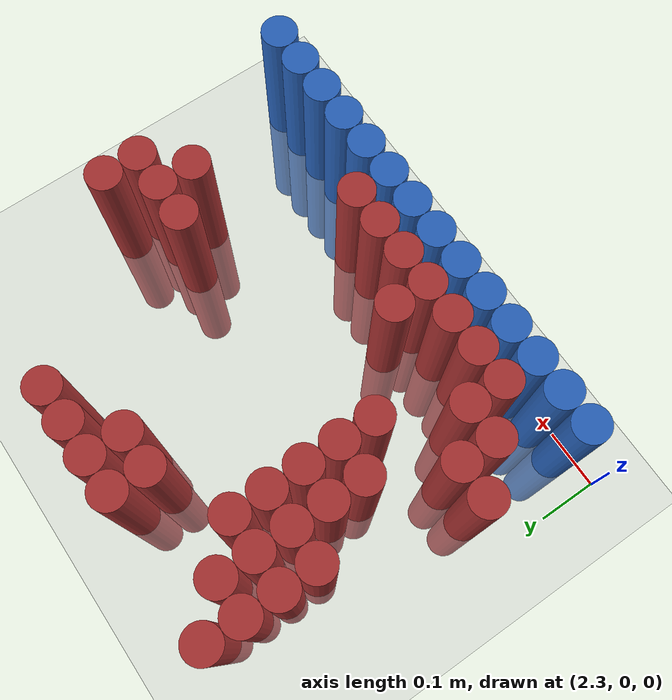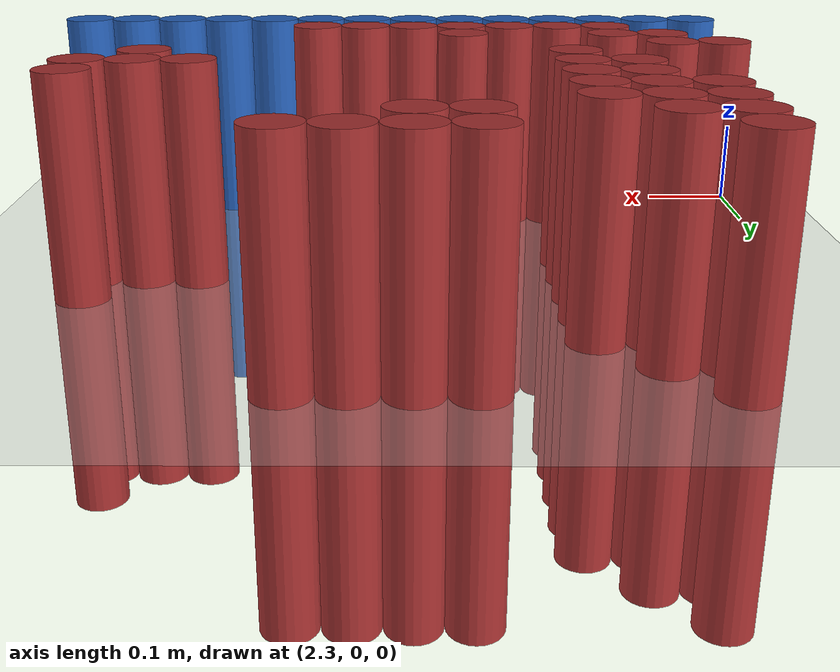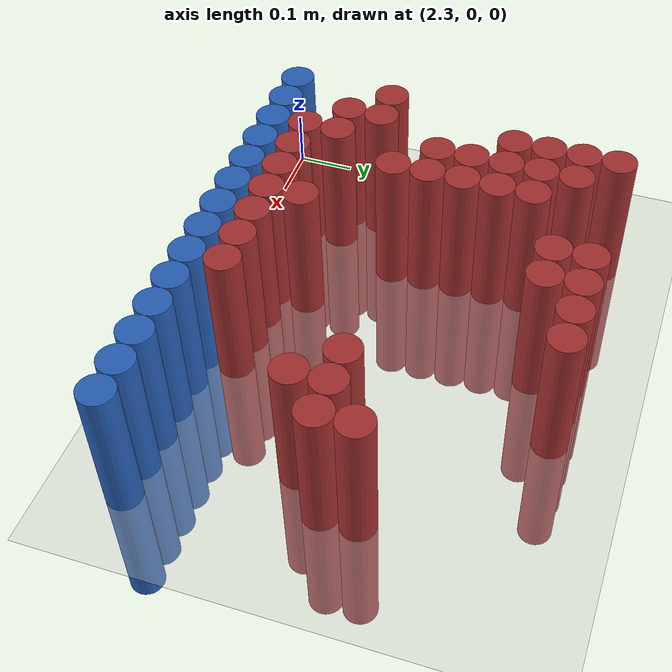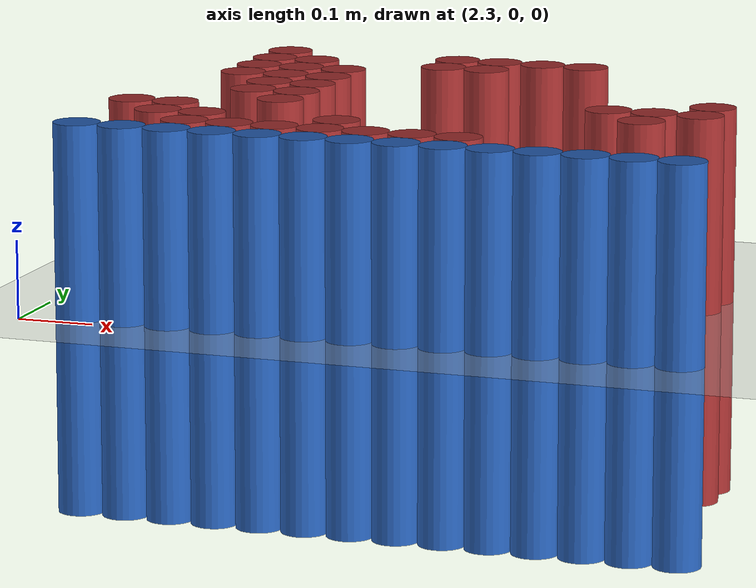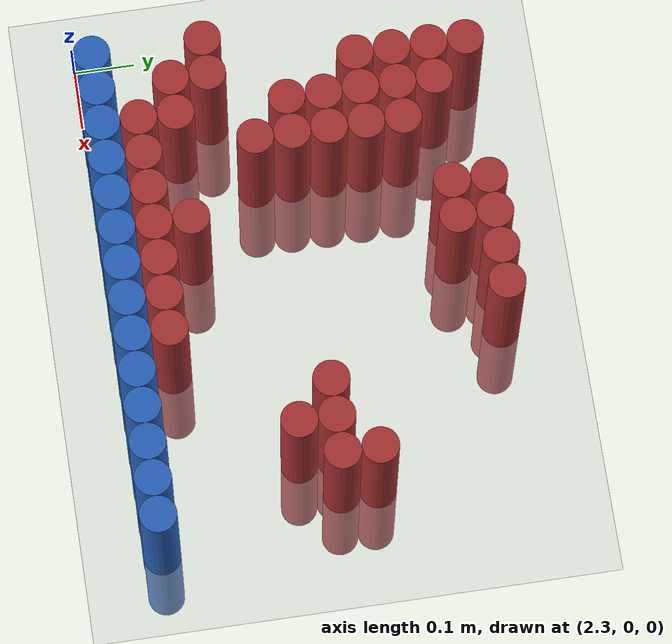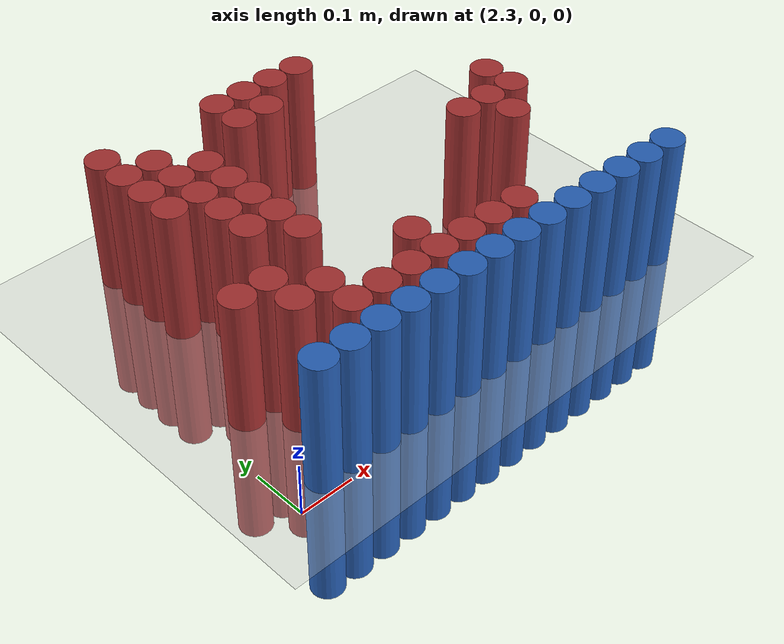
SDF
<sdf version="1.6">
 <world name="default">
  <model name="ground_plane">
   <static>1</static>
   <link name="link">
    <collision name="collision">
     <geometry><plane><normal>0 0 1</normal><size>100 100</size></plane></geometry>
     <surface><friction><ode><mu>100</mu><mu2>50</mu2></ode></friction></surface>
    </collision>
    <visual name="visual">
     <cast_shadows>0</cast_shadows>
     <geometry><plane><normal>0 0 1</normal><size>100 100</size></plane></geometry>
     <material>
      <script><uri>file://media/materials/scripts/gazebo.material</uri><name>Gazebo/Grey</name></script>
     </material>
    </visual>
   </link>
  </model>
  <model name="unit_cylinder_227">
   <static>1</static>
   <pose>2.430000 0.630000 0.000000 0.000000 0.000000 0.000000</pose>
   <link name="link">
    <inertial>
     <mass>1</mass>
     <inertia><ixx>0.145833</ixx><ixy>0</ixy><ixz>0</ixz><iyy>0.145833</iyy><iyz>0</iyz><izz>0.125</izz></inertia>
    </inertial>
    <collision name="collision">
     <geometry><cylinder><radius>0.030000</radius><length>0.5</length></cylinder></geometry>
    </collision>
    <visual name="visual">
     <geometry><cylinder><radius>0.030000</radius><length>0.5</length></cylinder></geometry>
     <material>
      <ambient>0.648000 0.192000 0.192000 1</ambient>
      <diffuse>0.648000 0.192000 0.192000 1</diffuse>
     </material>
     <material>
      <script><name>Gazebo/Grey</name><uri>file://media/materials/scripts/gazebo.material</uri></script>
     </material>
    </visual>
   </link>
  </model>
  <model name="unit_cylinder_228">
   <static>1</static>
   <pose>2.670000 0.630000 0.000000 0.000000 0.000000 0.000000</pose>
   <link name="link">
    <inertial>
     <mass>1</mass>
     <inertia><ixx>0.145833</ixx><ixy>0</ixy><ixz>0</ixz><iyy>0.145833</iyy><iyz>0</iyz><izz>0.125</izz></inertia>
    </inertial>
    <collision name="collision">
     <geometry><cylinder><radius>0.030000</radius><length>0.5</length></cylinder></geometry>
    </collision>
    <visual name="visual">
     <geometry><cylinder><radius>0.030000</radius><length>0.5</length></cylinder></geometry>
     <material>
      <ambient>0.648000 0.192000 0.192000 1</ambient>
      <diffuse>0.648000 0.192000 0.192000 1</diffuse>
     </material>
     <material>
      <script><name>Gazebo/Grey</name><uri>file://media/materials/scripts/gazebo.material</uri></script>
     </material>
    </visual>
   </link>
  </model>
  <model name="unit_cylinder_229">
   <static>1</static>
   <pose>2.730000 0.630000 0.000000 0.000000 0.000000 0.000000</pose>
   <link name="link">
    <inertial>
     <mass>1</mass>
     <inertia><ixx>0.145833</ixx><ixy>0</ixy><ixz>0</ixz><iyy>0.145833</iyy><iyz>0</iyz><izz>0.125</izz></inertia>
    </inertial>
    <collision name="collision">
     <geometry><cylinder><radius>0.030000</radius><length>0.5</length></cylinder></geometry>
    </collision>
    <visual name="visual">
     <geometry><cylinder><radius>0.030000</radius><length>0.5</length></cylinder></geometry>
     <material>
      <ambient>0.648000 0.192000 0.192000 1</ambient>
      <diffuse>0.648000 0.192000 0.192000 1</diffuse>
     </material>
     <material>
      <script><name>Gazebo/Grey</name><uri>file://media/materials/scripts/gazebo.material</uri></script>
     </material>
    </visual>
   </link>
  </model>
  <model name="unit_cylinder_230">
   <static>1</static>
   <pose>2.790000 0.630000 0.000000 0.000000 0.000000 0.000000</pose>
   <link name="link">
    <inertial>
     <mass>1</mass>
     <inertia><ixx>0.145833</ixx><ixy>0</ixy><ixz>0</ixz><iyy>0.145833</iyy><iyz>0</iyz><izz>0.125</izz></inertia>
    </inertial>
    <collision name="collision">
     <geometry><cylinder><radius>0.030000</radius><length>0.5</length></cylinder></geometry>
    </collision>
    <visual name="visual">
     <geometry><cylinder><radius>0.030000</radius><length>0.5</length></cylinder></geometry>
     <material>
      <ambient>0.648000 0.192000 0.192000 1</ambient>
      <diffuse>0.648000 0.192000 0.192000 1</diffuse>
     </material>
     <material>
      <script><name>Gazebo/Grey</name><uri>file://media/materials/scripts/gazebo.material</uri></script>
     </material>
    </visual>
   </link>
  </model>
  <model name="unit_cylinder_231">
   <static>1</static>
   <pose>2.850000 0.630000 0.000000 0.000000 0.000000 0.000000</pose>
   <link name="link">
    <inertial>
     <mass>1</mass>
     <inertia><ixx>0.145833</ixx><ixy>0</ixy><ixz>0</ixz><iyy>0.145833</iyy><iyz>0</iyz><izz>0.125</izz></inertia>
    </inertial>
    <collision name="collision">
     <geometry><cylinder><radius>0.030000</radius><length>0.5</length></cylinder></geometry>
    </collision>
    <visual name="visual">
     <geometry><cylinder><radius>0.030000</radius><length>0.5</length></cylinder></geometry>
     <material>
      <ambient>0.648000 0.192000 0.192000 1</ambient>
      <diffuse>0.648000 0.192000 0.192000 1</diffuse>
     </material>
     <material>
      <script><name>Gazebo/Grey</name><uri>file://media/materials/scripts/gazebo.material</uri></script>
     </material>
    </visual>
   </link>
  </model>
  <model name="unit_cylinder_240">
   <static>1</static>
   <pose>2.430000 0.570000 0.000000 0.000000 0.000000 0.000000</pose>
   <link name="link">
    <inertial>
     <mass>1</mass>
     <inertia><ixx>0.145833</ixx><ixy>0</ixy><ixz>0</ixz><iyy>0.145833</iyy><iyz>0</iyz><izz>0.125</izz></inertia>
    </inertial>
    <collision name="collision">
     <geometry><cylinder><radius>0.030000</radius><length>0.5</length></cylinder></geometry>
    </collision>
    <visual name="visual">
     <geometry><cylinder><radius>0.030000</radius><length>0.5</length></cylinder></geometry>
     <material>
      <ambient>0.648000 0.192000 0.192000 1</ambient>
      <diffuse>0.648000 0.192000 0.192000 1</diffuse>
     </material>
     <material>
      <script><name>Gazebo/Grey</name><uri>file://media/materials/scripts/gazebo.material</uri></script>
     </material>
    </visual>
   </link>
  </model>
  <model name="unit_cylinder_241">
   <static>1</static>
   <pose>2.490000 0.570000 0.000000 0.000000 0.000000 0.000000</pose>
   <link name="link">
    <inertial>
     <mass>1</mass>
     <inertia><ixx>0.145833</ixx><ixy>0</ixy><ixz>0</ixz><iyy>0.145833</iyy><iyz>0</iyz><izz>0.125</izz></inertia>
    </inertial>
    <collision name="collision">
     <geometry><cylinder><radius>0.030000</radius><length>0.5</length></cylinder></geometry>
    </collision>
    <visual name="visual">
     <geometry><cylinder><radius>0.030000</radius><length>0.5</length></cylinder></geometry>
     <material>
      <ambient>0.648000 0.192000 0.192000 1</ambient>
      <diffuse>0.648000 0.192000 0.192000 1</diffuse>
     </material>
     <material>
      <script><name>Gazebo/Grey</name><uri>file://media/materials/scripts/gazebo.material</uri></script>
     </material>
    </visual>
   </link>
  </model>
  <model name="unit_cylinder_242">
   <static>1</static>
   <pose>2.670000 0.570000 0.000000 0.000000 0.000000 0.000000</pose>
   <link name="link">
    <inertial>
     <mass>1</mass>
     <inertia><ixx>0.145833</ixx><ixy>0</ixy><ixz>0</ixz><iyy>0.145833</iyy><iyz>0</iyz><izz>0.125</izz></inertia>
    </inertial>
    <collision name="collision">
     <geometry><cylinder><radius>0.030000</radius><length>0.5</length></cylinder></geometry>
    </collision>
    <visual name="visual">
     <geometry><cylinder><radius>0.030000</radius><length>0.5</length></cylinder></geometry>
     <material>
      <ambient>0.648000 0.192000 0.192000 1</ambient>
      <diffuse>0.648000 0.192000 0.192000 1</diffuse>
     </material>
     <material>
      <script><name>Gazebo/Grey</name><uri>file://media/materials/scripts/gazebo.material</uri></script>
     </material>
    </visual>
   </link>
  </model>
  <model name="unit_cylinder_243">
   <static>1</static>
   <pose>2.730000 0.570000 0.000000 0.000000 0.000000 0.000000</pose>
   <link name="link">
    <inertial>
     <mass>1</mass>
     <inertia><ixx>0.145833</ixx><ixy>0</ixy><ixz>0</ixz><iyy>0.145833</iyy><iyz>0</iyz><izz>0.125</izz></inertia>
    </inertial>
    <collision name="collision">
     <geometry><cylinder><radius>0.030000</radius><length>0.5</length></cylinder></geometry>
    </collision>
    <visual name="visual">
     <geometry><cylinder><radius>0.030000</radius><length>0.5</length></cylinder></geometry>
     <material>
      <ambient>0.648000 0.192000 0.192000 1</ambient>
      <diffuse>0.648000 0.192000 0.192000 1</diffuse>
     </material>
     <material>
      <script><name>Gazebo/Grey</name><uri>file://media/materials/scripts/gazebo.material</uri></script>
     </material>
    </visual>
   </link>
  </model>
  <model name="unit_cylinder_253">
   <static>1</static>
   <pose>2.430000 0.510000 0.000000 0.000000 0.000000 0.000000</pose>
   <link name="link">
    <inertial>
     <mass>1</mass>
     <inertia><ixx>0.145833</ixx><ixy>0</ixy><ixz>0</ixz><iyy>0.145833</iyy><iyz>0</iyz><izz>0.125</izz></inertia>
    </inertial>
    <collision name="collision">
     <geometry><cylinder><radius>0.030000</radius><length>0.5</length></cylinder></geometry>
    </collision>
    <visual name="visual">
     <geometry><cylinder><radius>0.030000</radius><length>0.5</length></cylinder></geometry>
     <material>
      <ambient>0.648000 0.192000 0.192000 1</ambient>
      <diffuse>0.648000 0.192000 0.192000 1</diffuse>
     </material>
     <material>
      <script><name>Gazebo/Grey</name><uri>file://media/materials/scripts/gazebo.material</uri></script>
     </material>
    </visual>
   </link>
  </model>
  <model name="unit_cylinder_254">
   <static>1</static>
   <pose>2.490000 0.510000 0.000000 0.000000 0.000000 0.000000</pose>
   <link name="link">
    <inertial>
     <mass>1</mass>
     <inertia><ixx>0.145833</ixx><ixy>0</ixy><ixz>0</ixz><iyy>0.145833</iyy><iyz>0</iyz><izz>0.125</izz></inertia>
    </inertial>
    <collision name="collision">
     <geometry><cylinder><radius>0.030000</radius><length>0.5</length></cylinder></geometry>
    </collision>
    <visual name="visual">
     <geometry><cylinder><radius>0.030000</radius><length>0.5</length></cylinder></geometry>
     <material>
      <ambient>0.648000 0.192000 0.192000 1</ambient>
      <diffuse>0.648000 0.192000 0.192000 1</diffuse>
     </material>
     <material>
      <script><name>Gazebo/Grey</name><uri>file://media/materials/scripts/gazebo.material</uri></script>
     </material>
    </visual>
   </link>
  </model>
  <model name="unit_cylinder_255">
   <static>1</static>
   <pose>2.550000 0.510000 0.000000 0.000000 0.000000 0.000000</pose>
   <link name="link">
    <inertial>
     <mass>1</mass>
     <inertia><ixx>0.145833</ixx><ixy>0</ixy><ixz>0</ixz><iyy>0.145833</iyy><iyz>0</iyz><izz>0.125</izz></inertia>
    </inertial>
    <collision name="collision">
     <geometry><cylinder><radius>0.030000</radius><length>0.5</length></cylinder></geometry>
    </collision>
    <visual name="visual">
     <geometry><cylinder><radius>0.030000</radius><length>0.5</length></cylinder></geometry>
     <material>
      <ambient>0.648000 0.192000 0.192000 1</ambient>
      <diffuse>0.648000 0.192000 0.192000 1</diffuse>
     </material>
     <material>
      <script><name>Gazebo/Grey</name><uri>file://media/materials/scripts/gazebo.material</uri></script>
     </material>
    </visual>
   </link>
  </model>
  <model name="unit_cylinder_265">
   <static>1</static>
   <pose>2.430000 0.450000 0.000000 0.000000 0.000000 0.000000</pose>
   <link name="link">
    <inertial>
     <mass>1</mass>
     <inertia><ixx>0.145833</ixx><ixy>0</ixy><ixz>0</ixz><iyy>0.145833</iyy><iyz>0</iyz><izz>0.125</izz></inertia>
    </inertial>
    <collision name="collision">
     <geometry><cylinder><radius>0.030000</radius><length>0.5</length></cylinder></geometry>
    </collision>
    <visual name="visual">
     <geometry><cylinder><radius>0.030000</radius><length>0.5</length></cylinder></geometry>
     <material>
      <ambient>0.648000 0.192000 0.192000 1</ambient>
      <diffuse>0.648000 0.192000 0.192000 1</diffuse>
     </material>
     <material>
      <script><name>Gazebo/Grey</name><uri>file://media/materials/scripts/gazebo.material</uri></script>
     </material>
    </visual>
   </link>
  </model>
  <model name="unit_cylinder_266">
   <static>1</static>
   <pose>2.490000 0.450000 0.000000 0.000000 0.000000 0.000000</pose>
   <link name="link">
    <inertial>
     <mass>1</mass>
     <inertia><ixx>0.145833</ixx><ixy>0</ixy><ixz>0</ixz><iyy>0.145833</iyy><iyz>0</iyz><izz>0.125</izz></inertia>
    </inertial>
    <collision name="collision">
     <geometry><cylinder><radius>0.030000</radius><length>0.5</length></cylinder></geometry>
    </collision>
    <visual name="visual">
     <geometry><cylinder><radius>0.030000</radius><length>0.5</length></cylinder></geometry>
     <material>
      <ambient>0.648000 0.192000 0.192000 1</ambient>
      <diffuse>0.648000 0.192000 0.192000 1</diffuse>
     </material>
     <material>
      <script><name>Gazebo/Grey</name><uri>file://media/materials/scripts/gazebo.material</uri></script>
     </material>
    </visual>
   </link>
  </model>
  <model name="unit_cylinder_267">
   <static>1</static>
   <pose>2.550000 0.450000 0.000000 0.000000 0.000000 0.000000</pose>
   <link name="link">
    <inertial>
     <mass>1</mass>
     <inertia><ixx>0.145833</ixx><ixy>0</ixy><ixz>0</ixz><iyy>0.145833</iyy><iyz>0</iyz><izz>0.125</izz></inertia>
    </inertial>
    <collision name="collision">
     <geometry><cylinder><radius>0.030000</radius><length>0.5</length></cylinder></geometry>
    </collision>
    <visual name="visual">
     <geometry><cylinder><radius>0.030000</radius><length>0.5</length></cylinder></geometry>
     <material>
      <ambient>0.648000 0.192000 0.192000 1</ambient>
      <diffuse>0.648000 0.192000 0.192000 1</diffuse>
     </material>
     <material>
      <script><name>Gazebo/Grey</name><uri>file://media/materials/scripts/gazebo.material</uri></script>
     </material>
    </visual>
   </link>
  </model>
  <model name="unit_cylinder_275">
   <static>1</static>
   <pose>2.490000 0.390000 0.000000 0.000000 0.000000 0.000000</pose>
   <link name="link">
    <inertial>
     <mass>1</mass>
     <inertia><ixx>0.145833</ixx><ixy>0</ixy><ixz>0</ixz><iyy>0.145833</iyy><iyz>0</iyz><izz>0.125</izz></inertia>
    </inertial>
    <collision name="collision">
     <geometry><cylinder><radius>0.030000</radius><length>0.5</length></cylinder></geometry>
    </collision>
    <visual name="visual">
     <geometry><cylinder><radius>0.030000</radius><length>0.5</length></cylinder></geometry>
     <material>
      <ambient>0.648000 0.192000 0.192000 1</ambient>
      <diffuse>0.648000 0.192000 0.192000 1</diffuse>
     </material>
     <material>
      <script><name>Gazebo/Grey</name><uri>file://media/materials/scripts/gazebo.material</uri></script>
     </material>
    </visual>
   </link>
  </model>
  <model name="unit_cylinder_276">
   <static>1</static>
   <pose>2.550000 0.390000 0.000000 0.000000 0.000000 0.000000</pose>
   <link name="link">
    <inertial>
     <mass>1</mass>
     <inertia><ixx>0.145833</ixx><ixy>0</ixy><ixz>0</ixz><iyy>0.145833</iyy><iyz>0</iyz><izz>0.125</izz></inertia>
    </inertial>
    <collision name="collision">
     <geometry><cylinder><radius>0.030000</radius><length>0.5</length></cylinder></geometry>
    </collision>
    <visual name="visual">
     <geometry><cylinder><radius>0.030000</radius><length>0.5</length></cylinder></geometry>
     <material>
      <ambient>0.648000 0.192000 0.192000 1</ambient>
      <diffuse>0.648000 0.192000 0.192000 1</diffuse>
     </material>
     <material>
      <script><name>Gazebo/Grey</name><uri>file://media/materials/scripts/gazebo.material</uri></script>
     </material>
    </visual>
   </link>
  </model>
  <model name="unit_cylinder_277">
   <static>1</static>
   <pose>3.090000 0.390000 0.000000 0.000000 0.000000 0.000000</pose>
   <link name="link">
    <inertial>
     <mass>1</mass>
     <inertia><ixx>0.145833</ixx><ixy>0</ixy><ixz>0</ixz><iyy>0.145833</iyy><iyz>0</iyz><izz>0.125</izz></inertia>
    </inertial>
    <collision name="collision">
     <geometry><cylinder><radius>0.030000</radius><length>0.5</length></cylinder></geometry>
    </collision>
    <visual name="visual">
     <geometry><cylinder><radius>0.030000</radius><length>0.5</length></cylinder></geometry>
     <material>
      <ambient>0.648000 0.192000 0.192000 1</ambient>
      <diffuse>0.648000 0.192000 0.192000 1</diffuse>
     </material>
     <material>
      <script><name>Gazebo/Grey</name><uri>file://media/materials/scripts/gazebo.material</uri></script>
     </material>
    </visual>
   </link>
  </model>
  <model name="unit_cylinder_283">
   <static>1</static>
   <pose>2.490000 0.330000 0.000000 0.000000 0.000000 0.000000</pose>
   <link name="link">
    <inertial>
     <mass>1</mass>
     <inertia><ixx>0.145833</ixx><ixy>0</ixy><ixz>0</ixz><iyy>0.145833</iyy><iyz>0</iyz><izz>0.125</izz></inertia>
    </inertial>
    <collision name="collision">
     <geometry><cylinder><radius>0.030000</radius><length>0.5</length></cylinder></geometry>
    </collision>
    <visual name="visual">
     <geometry><cylinder><radius>0.030000</radius><length>0.5</length></cylinder></geometry>
     <material>
      <ambient>0.648000 0.192000 0.192000 1</ambient>
      <diffuse>0.648000 0.192000 0.192000 1</diffuse>
     </material>
     <material>
      <script><name>Gazebo/Grey</name><uri>file://media/materials/scripts/gazebo.material</uri></script>
     </material>
    </visual>
   </link>
  </model>
  <model name="unit_cylinder_284">
   <static>1</static>
   <pose>2.550000 0.330000 0.000000 0.000000 0.000000 0.000000</pose>
   <link name="link">
    <inertial>
     <mass>1</mass>
     <inertia><ixx>0.145833</ixx><ixy>0</ixy><ixz>0</ixz><iyy>0.145833</iyy><iyz>0</iyz><izz>0.125</izz></inertia>
    </inertial>
    <collision name="collision">
     <geometry><cylinder><radius>0.030000</radius><length>0.5</length></cylinder></geometry>
    </collision>
    <visual name="visual">
     <geometry><cylinder><radius>0.030000</radius><length>0.5</length></cylinder></geometry>
     <material>
      <ambient>0.648000 0.192000 0.192000 1</ambient>
      <diffuse>0.648000 0.192000 0.192000 1</diffuse>
     </material>
     <material>
      <script><name>Gazebo/Grey</name><uri>file://media/materials/scripts/gazebo.material</uri></script>
     </material>
    </visual>
   </link>
  </model>
  <model name="unit_cylinder_285">
   <static>1</static>
   <pose>2.970000 0.330000 0.000000 0.000000 0.000000 0.000000</pose>
   <link name="link">
    <inertial>
     <mass>1</mass>
     <inertia><ixx>0.145833</ixx><ixy>0</ixy><ixz>0</ixz><iyy>0.145833</iyy><iyz>0</iyz><izz>0.125</izz></inertia>
    </inertial>
    <collision name="collision">
     <geometry><cylinder><radius>0.030000</radius><length>0.5</length></cylinder></geometry>
    </collision>
    <visual name="visual">
     <geometry><cylinder><radius>0.030000</radius><length>0.5</length></cylinder></geometry>
     <material>
      <ambient>0.648000 0.192000 0.192000 1</ambient>
      <diffuse>0.648000 0.192000 0.192000 1</diffuse>
     </material>
     <material>
      <script><name>Gazebo/Grey</name><uri>file://media/materials/scripts/gazebo.material</uri></script>
     </material>
    </visual>
   </link>
  </model>
  <model name="unit_cylinder_286">
   <static>1</static>
   <pose>3.030000 0.330000 0.000000 0.000000 0.000000 0.000000</pose>
   <link name="link">
    <inertial>
     <mass>1</mass>
     <inertia><ixx>0.145833</ixx><ixy>0</ixy><ixz>0</ixz><iyy>0.145833</iyy><iyz>0</iyz><izz>0.125</izz></inertia>
    </inertial>
    <collision name="collision">
     <geometry><cylinder><radius>0.030000</radius><length>0.5</length></cylinder></geometry>
    </collision>
    <visual name="visual">
     <geometry><cylinder><radius>0.030000</radius><length>0.5</length></cylinder></geometry>
     <material>
      <ambient>0.648000 0.192000 0.192000 1</ambient>
      <diffuse>0.648000 0.192000 0.192000 1</diffuse>
     </material>
     <material>
      <script><name>Gazebo/Grey</name><uri>file://media/materials/scripts/gazebo.material</uri></script>
     </material>
    </visual>
   </link>
  </model>
  <model name="unit_cylinder_287">
   <static>1</static>
   <pose>3.090000 0.330000 0.000000 0.000000 0.000000 0.000000</pose>
   <link name="link">
    <inertial>
     <mass>1</mass>
     <inertia><ixx>0.145833</ixx><ixy>0</ixy><ixz>0</ixz><iyy>0.145833</iyy><iyz>0</iyz><izz>0.125</izz></inertia>
    </inertial>
    <collision name="collision">
     <geometry><cylinder><radius>0.030000</radius><length>0.5</length></cylinder></geometry>
    </collision>
    <visual name="visual">
     <geometry><cylinder><radius>0.030000</radius><length>0.5</length></cylinder></geometry>
     <material>
      <ambient>0.648000 0.192000 0.192000 1</ambient>
      <diffuse>0.648000 0.192000 0.192000 1</diffuse>
     </material>
     <material>
      <script><name>Gazebo/Grey</name><uri>file://media/materials/scripts/gazebo.material</uri></script>
     </material>
    </visual>
   </link>
  </model>
  <model name="unit_cylinder_292">
   <static>1</static>
   <pose>2.550000 0.270000 0.000000 0.000000 0.000000 0.000000</pose>
   <link name="link">
    <inertial>
     <mass>1</mass>
     <inertia><ixx>0.145833</ixx><ixy>0</ixy><ixz>0</ixz><iyy>0.145833</iyy><iyz>0</iyz><izz>0.125</izz></inertia>
    </inertial>
    <collision name="collision">
     <geometry><cylinder><radius>0.030000</radius><length>0.5</length></cylinder></geometry>
    </collision>
    <visual name="visual">
     <geometry><cylinder><radius>0.030000</radius><length>0.5</length></cylinder></geometry>
     <material>
      <ambient>0.648000 0.192000 0.192000 1</ambient>
      <diffuse>0.648000 0.192000 0.192000 1</diffuse>
     </material>
     <material>
      <script><name>Gazebo/Grey</name><uri>file://media/materials/scripts/gazebo.material</uri></script>
     </material>
    </visual>
   </link>
  </model>
  <model name="unit_cylinder_293">
   <static>1</static>
   <pose>3.030000 0.270000 0.000000 0.000000 0.000000 0.000000</pose>
   <link name="link">
    <inertial>
     <mass>1</mass>
     <inertia><ixx>0.145833</ixx><ixy>0</ixy><ixz>0</ixz><iyy>0.145833</iyy><iyz>0</iyz><izz>0.125</izz></inertia>
    </inertial>
    <collision name="collision">
     <geometry><cylinder><radius>0.030000</radius><length>0.5</length></cylinder></geometry>
    </collision>
    <visual name="visual">
     <geometry><cylinder><radius>0.030000</radius><length>0.5</length></cylinder></geometry>
     <material>
      <ambient>0.648000 0.192000 0.192000 1</ambient>
      <diffuse>0.648000 0.192000 0.192000 1</diffuse>
     </material>
     <material>
      <script><name>Gazebo/Grey</name><uri>file://media/materials/scripts/gazebo.material</uri></script>
     </material>
    </visual>
   </link>
  </model>
  <model name="unit_cylinder_301">
   <static>1</static>
   <pose>2.370000 0.210000 0.000000 0.000000 0.000000 0.000000</pose>
   <link name="link">
    <inertial>
     <mass>1</mass>
     <inertia><ixx>0.145833</ixx><ixy>0</ixy><ixz>0</ixz><iyy>0.145833</iyy><iyz>0</iyz><izz>0.125</izz></inertia>
    </inertial>
    <collision name="collision">
     <geometry><cylinder><radius>0.030000</radius><length>0.5</length></cylinder></geometry>
    </collision>
    <visual name="visual">
     <geometry><cylinder><radius>0.030000</radius><length>0.5</length></cylinder></geometry>
     <material>
      <ambient>0.648000 0.192000 0.192000 1</ambient>
      <diffuse>0.648000 0.192000 0.192000 1</diffuse>
     </material>
     <material>
      <script><name>Gazebo/Grey</name><uri>file://media/materials/scripts/gazebo.material</uri></script>
     </material>
    </visual>
   </link>
  </model>
  <model name="unit_cylinder_302">
   <static>1</static>
   <pose>2.430000 0.210000 0.000000 0.000000 0.000000 0.000000</pose>
   <link name="link">
    <inertial>
     <mass>1</mass>
     <inertia><ixx>0.145833</ixx><ixy>0</ixy><ixz>0</ixz><iyy>0.145833</iyy><iyz>0</iyz><izz>0.125</izz></inertia>
    </inertial>
    <collision name="collision">
     <geometry><cylinder><radius>0.030000</radius><length>0.5</length></cylinder></geometry>
    </collision>
    <visual name="visual">
     <geometry><cylinder><radius>0.030000</radius><length>0.5</length></cylinder></geometry>
     <material>
      <ambient>0.648000 0.192000 0.192000 1</ambient>
      <diffuse>0.648000 0.192000 0.192000 1</diffuse>
     </material>
     <material>
      <script><name>Gazebo/Grey</name><uri>file://media/materials/scripts/gazebo.material</uri></script>
     </material>
    </visual>
   </link>
  </model>
  <model name="unit_cylinder_312">
   <static>1</static>
   <pose>2.430000 0.150000 0.000000 0.000000 0.000000 0.000000</pose>
   <link name="link">
    <inertial>
     <mass>1</mass>
     <inertia><ixx>0.145833</ixx><ixy>0</ixy><ixz>0</ixz><iyy>0.145833</iyy><iyz>0</iyz><izz>0.125</izz></inertia>
    </inertial>
    <collision name="collision">
     <geometry><cylinder><radius>0.030000</radius><length>0.5</length></cylinder></geometry>
    </collision>
    <visual name="visual">
     <geometry><cylinder><radius>0.030000</radius><length>0.5</length></cylinder></geometry>
     <material>
      <ambient>0.648000 0.192000 0.192000 1</ambient>
      <diffuse>0.648000 0.192000 0.192000 1</diffuse>
     </material>
     <material>
      <script><name>Gazebo/Grey</name><uri>file://media/materials/scripts/gazebo.material</uri></script>
     </material>
    </visual>
   </link>
  </model>
  <model name="unit_cylinder_313">
   <static>1</static>
   <pose>2.490000 0.150000 0.000000 0.000000 0.000000 0.000000</pose>
   <link name="link">
    <inertial>
     <mass>1</mass>
     <inertia><ixx>0.145833</ixx><ixy>0</ixy><ixz>0</ixz><iyy>0.145833</iyy><iyz>0</iyz><izz>0.125</izz></inertia>
    </inertial>
    <collision name="collision">
     <geometry><cylinder><radius>0.030000</radius><length>0.5</length></cylinder></geometry>
    </collision>
    <visual name="visual">
     <geometry><cylinder><radius>0.030000</radius><length>0.5</length></cylinder></geometry>
     <material>
      <ambient>0.648000 0.192000 0.192000 1</ambient>
      <diffuse>0.648000 0.192000 0.192000 1</diffuse>
     </material>
     <material>
      <script><name>Gazebo/Grey</name><uri>file://media/materials/scripts/gazebo.material</uri></script>
     </material>
    </visual>
   </link>
  </model>
  <model name="unit_cylinder_314">
   <static>1</static>
   <pose>2.670000 0.150000 0.000000 0.000000 0.000000 0.000000</pose>
   <link name="link">
    <inertial>
     <mass>1</mass>
     <inertia><ixx>0.145833</ixx><ixy>0</ixy><ixz>0</ixz><iyy>0.145833</iyy><iyz>0</iyz><izz>0.125</izz></inertia>
    </inertial>
    <collision name="collision">
     <geometry><cylinder><radius>0.030000</radius><length>0.5</length></cylinder></geometry>
    </collision>
    <visual name="visual">
     <geometry><cylinder><radius>0.030000</radius><length>0.5</length></cylinder></geometry>
     <material>
      <ambient>0.648000 0.192000 0.192000 1</ambient>
      <diffuse>0.648000 0.192000 0.192000 1</diffuse>
     </material>
     <material>
      <script><name>Gazebo/Grey</name><uri>file://media/materials/scripts/gazebo.material</uri></script>
     </material>
    </visual>
   </link>
  </model>
  <model name="unit_cylinder_319">
   <static>1</static>
   <pose>2.490000 0.090000 0.000000 0.000000 0.000000 0.000000</pose>
   <link name="link">
    <inertial>
     <mass>1</mass>
     <inertia><ixx>0.145833</ixx><ixy>0</ixy><ixz>0</ixz><iyy>0.145833</iyy><iyz>0</iyz><izz>0.125</izz></inertia>
    </inertial>
    <collision name="collision">
     <geometry><cylinder><radius>0.030000</radius><length>0.5</length></cylinder></geometry>
    </collision>
    <visual name="visual">
     <geometry><cylinder><radius>0.030000</radius><length>0.5</length></cylinder></geometry>
     <material>
      <ambient>0.648000 0.192000 0.192000 1</ambient>
      <diffuse>0.648000 0.192000 0.192000 1</diffuse>
     </material>
     <material>
      <script><name>Gazebo/Grey</name><uri>file://media/materials/scripts/gazebo.material</uri></script>
     </material>
    </visual>
   </link>
  </model>
  <model name="unit_cylinder_320">
   <static>1</static>
   <pose>2.550000 0.090000 0.000000 0.000000 0.000000 0.000000</pose>
   <link name="link">
    <inertial>
     <mass>1</mass>
     <inertia><ixx>0.145833</ixx><ixy>0</ixy><ixz>0</ixz><iyy>0.145833</iyy><iyz>0</iyz><izz>0.125</izz></inertia>
    </inertial>
    <collision name="collision">
     <geometry><cylinder><radius>0.030000</radius><length>0.5</length></cylinder></geometry>
    </collision>
    <visual name="visual">
     <geometry><cylinder><radius>0.030000</radius><length>0.5</length></cylinder></geometry>
     <material>
      <ambient>0.648000 0.192000 0.192000 1</ambient>
      <diffuse>0.648000 0.192000 0.192000 1</diffuse>
     </material>
     <material>
      <script><name>Gazebo/Grey</name><uri>file://media/materials/scripts/gazebo.material</uri></script>
     </material>
    </visual>
   </link>
  </model>
  <model name="unit_cylinder_321">
   <static>1</static>
   <pose>2.610000 0.090000 0.000000 0.000000 0.000000 0.000000</pose>
   <link name="link">
    <inertial>
     <mass>1</mass>
     <inertia><ixx>0.145833</ixx><ixy>0</ixy><ixz>0</ixz><iyy>0.145833</iyy><iyz>0</iyz><izz>0.125</izz></inertia>
    </inertial>
    <collision name="collision">
     <geometry><cylinder><radius>0.030000</radius><length>0.5</length></cylinder></geometry>
    </collision>
    <visual name="visual">
     <geometry><cylinder><radius>0.030000</radius><length>0.5</length></cylinder></geometry>
     <material>
      <ambient>0.648000 0.192000 0.192000 1</ambient>
      <diffuse>0.648000 0.192000 0.192000 1</diffuse>
     </material>
     <material>
      <script><name>Gazebo/Grey</name><uri>file://media/materials/scripts/gazebo.material</uri></script>
     </material>
    </visual>
   </link>
  </model>
  <model name="unit_cylinder_322">
   <static>1</static>
   <pose>2.670000 0.090000 0.000000 0.000000 0.000000 0.000000</pose>
   <link name="link">
    <inertial>
     <mass>1</mass>
     <inertia><ixx>0.145833</ixx><ixy>0</ixy><ixz>0</ixz><iyy>0.145833</iyy><iyz>0</iyz><izz>0.125</izz></inertia>
    </inertial>
    <collision name="collision">
     <geometry><cylinder><radius>0.030000</radius><length>0.5</length></cylinder></geometry>
    </collision>
    <visual name="visual">
     <geometry><cylinder><radius>0.030000</radius><length>0.5</length></cylinder></geometry>
     <material>
      <ambient>0.648000 0.192000 0.192000 1</ambient>
      <diffuse>0.648000 0.192000 0.192000 1</diffuse>
     </material>
     <material>
      <script><name>Gazebo/Grey</name><uri>file://media/materials/scripts/gazebo.material</uri></script>
     </material>
    </visual>
   </link>
  </model>
  <model name="unit_cylinder_323">
   <static>1</static>
   <pose>2.730000 0.090000 0.000000 0.000000 0.000000 0.000000</pose>
   <link name="link">
    <inertial>
     <mass>1</mass>
     <inertia><ixx>0.145833</ixx><ixy>0</ixy><ixz>0</ixz><iyy>0.145833</iyy><iyz>0</iyz><izz>0.125</izz></inertia>
    </inertial>
    <collision name="collision">
     <geometry><cylinder><radius>0.030000</radius><length>0.5</length></cylinder></geometry>
    </collision>
    <visual name="visual">
     <geometry><cylinder><radius>0.030000</radius><length>0.5</length></cylinder></geometry>
     <material>
      <ambient>0.648000 0.192000 0.192000 1</ambient>
      <diffuse>0.648000 0.192000 0.192000 1</diffuse>
     </material>
     <material>
      <script><name>Gazebo/Grey</name><uri>file://media/materials/scripts/gazebo.material</uri></script>
     </material>
    </visual>
   </link>
  </model>
  <model name="unit_cylinder_324">
   <static>1</static>
   <pose>2.790000 0.090000 0.000000 0.000000 0.000000 0.000000</pose>
   <link name="link">
    <inertial>
     <mass>1</mass>
     <inertia><ixx>0.145833</ixx><ixy>0</ixy><ixz>0</ixz><iyy>0.145833</iyy><iyz>0</iyz><izz>0.125</izz></inertia>
    </inertial>
    <collision name="collision">
     <geometry><cylinder><radius>0.030000</radius><length>0.5</length></cylinder></geometry>
    </collision>
    <visual name="visual">
     <geometry><cylinder><radius>0.030000</radius><length>0.5</length></cylinder></geometry>
     <material>
      <ambient>0.648000 0.192000 0.192000 1</ambient>
      <diffuse>0.648000 0.192000 0.192000 1</diffuse>
     </material>
     <material>
      <script><name>Gazebo/Grey</name><uri>file://media/materials/scripts/gazebo.material</uri></script>
     </material>
    </visual>
   </link>
  </model>
  <model name="unit_cylinder_325">
   <static>1</static>
   <pose>2.850000 0.090000 0.000000 0.000000 0.000000 0.000000</pose>
   <link name="link">
    <inertial>
     <mass>1</mass>
     <inertia><ixx>0.145833</ixx><ixy>0</ixy><ixz>0</ixz><iyy>0.145833</iyy><iyz>0</iyz><izz>0.125</izz></inertia>
    </inertial>
    <collision name="collision">
     <geometry><cylinder><radius>0.030000</radius><length>0.5</length></cylinder></geometry>
    </collision>
    <visual name="visual">
     <geometry><cylinder><radius>0.030000</radius><length>0.5</length></cylinder></geometry>
     <material>
      <ambient>0.648000 0.192000 0.192000 1</ambient>
      <diffuse>0.648000 0.192000 0.192000 1</diffuse>
     </material>
     <material>
      <script><name>Gazebo/Grey</name><uri>file://media/materials/scripts/gazebo.material</uri></script>
     </material>
    </visual>
   </link>
  </model>
  <model name="unit_cylinder_338">
   <static>1</static>
   <pose>2.370000 0.030000 0.000000 0.000000 0.000000 0.000000</pose>
   <link name="link">
    <inertial>
     <mass>1</mass>
     <inertia><ixx>0.145833</ixx><ixy>0</ixy><ixz>0</ixz><iyy>0.145833</iyy><iyz>0</iyz><izz>0.125</izz></inertia>
    </inertial>
    <collision name="collision">
     <geometry><cylinder><radius>0.030000</radius><length>0.5</length></cylinder></geometry>
    </collision>
    <visual name="visual">
     <geometry><cylinder><radius>0.030000</radius><length>0.5</length></cylinder></geometry>
     <material>
      <ambient>0.152000 0.379000 0.720000 1</ambient>
      <diffuse>0.152000 0.379000 0.720000 1</diffuse>
     </material>
     <material>
      <script><name>Gazebo/Grey</name><uri>file://media/materials/scripts/gazebo.material</uri></script>
     </material>
    </visual>
   </link>
  </model>
  <model name="unit_cylinder_339">
   <static>1</static>
   <pose>2.430000 0.030000 0.000000 0.000000 0.000000 0.000000</pose>
   <link name="link">
    <inertial>
     <mass>1</mass>
     <inertia><ixx>0.145833</ixx><ixy>0</ixy><ixz>0</ixz><iyy>0.145833</iyy><iyz>0</iyz><izz>0.125</izz></inertia>
    </inertial>
    <collision name="collision">
     <geometry><cylinder><radius>0.030000</radius><length>0.5</length></cylinder></geometry>
    </collision>
    <visual name="visual">
     <geometry><cylinder><radius>0.030000</radius><length>0.5</length></cylinder></geometry>
     <material>
      <ambient>0.152000 0.379000 0.720000 1</ambient>
      <diffuse>0.152000 0.379000 0.720000 1</diffuse>
     </material>
     <material>
      <script><name>Gazebo/Grey</name><uri>file://media/materials/scripts/gazebo.material</uri></script>
     </material>
    </visual>
   </link>
  </model>
  <model name="unit_cylinder_340">
   <static>1</static>
   <pose>2.490000 0.030000 0.000000 0.000000 0.000000 0.000000</pose>
   <link name="link">
    <inertial>
     <mass>1</mass>
     <inertia><ixx>0.145833</ixx><ixy>0</ixy><ixz>0</ixz><iyy>0.145833</iyy><iyz>0</iyz><izz>0.125</izz></inertia>
    </inertial>
    <collision name="collision">
     <geometry><cylinder><radius>0.030000</radius><length>0.5</length></cylinder></geometry>
    </collision>
    <visual name="visual">
     <geometry><cylinder><radius>0.030000</radius><length>0.5</length></cylinder></geometry>
     <material>
      <ambient>0.152000 0.379000 0.720000 1</ambient>
      <diffuse>0.152000 0.379000 0.720000 1</diffuse>
     </material>
     <material>
      <script><name>Gazebo/Grey</name><uri>file://media/materials/scripts/gazebo.material</uri></script>
     </material>
    </visual>
   </link>
  </model>
  <model name="unit_cylinder_341">
   <static>1</static>
   <pose>2.550000 0.030000 0.000000 0.000000 0.000000 0.000000</pose>
   <link name="link">
    <inertial>
     <mass>1</mass>
     <inertia><ixx>0.145833</ixx><ixy>0</ixy><ixz>0</ixz><iyy>0.145833</iyy><iyz>0</iyz><izz>0.125</izz></inertia>
    </inertial>
    <collision name="collision">
     <geometry><cylinder><radius>0.030000</radius><length>0.5</length></cylinder></geometry>
    </collision>
    <visual name="visual">
     <geometry><cylinder><radius>0.030000</radius><length>0.5</length></cylinder></geometry>
     <material>
      <ambient>0.152000 0.379000 0.720000 1</ambient>
      <diffuse>0.152000 0.379000 0.720000 1</diffuse>
     </material>
     <material>
      <script><name>Gazebo/Grey</name><uri>file://media/materials/scripts/gazebo.material</uri></script>
     </material>
    </visual>
   </link>
  </model>
  <model name="unit_cylinder_342">
   <static>1</static>
   <pose>2.610000 0.030000 0.000000 0.000000 0.000000 0.000000</pose>
   <link name="link">
    <inertial>
     <mass>1</mass>
     <inertia><ixx>0.145833</ixx><ixy>0</ixy><ixz>0</ixz><iyy>0.145833</iyy><iyz>0</iyz><izz>0.125</izz></inertia>
    </inertial>
    <collision name="collision">
     <geometry><cylinder><radius>0.030000</radius><length>0.5</length></cylinder></geometry>
    </collision>
    <visual name="visual">
     <geometry><cylinder><radius>0.030000</radius><length>0.5</length></cylinder></geometry>
     <material>
      <ambient>0.152000 0.379000 0.720000 1</ambient>
      <diffuse>0.152000 0.379000 0.720000 1</diffuse>
     </material>
     <material>
      <script><name>Gazebo/Grey</name><uri>file://media/materials/scripts/gazebo.material</uri></script>
     </material>
    </visual>
   </link>
  </model>
  <model name="unit_cylinder_343">
   <static>1</static>
   <pose>2.670000 0.030000 0.000000 0.000000 0.000000 0.000000</pose>
   <link name="link">
    <inertial>
     <mass>1</mass>
     <inertia><ixx>0.145833</ixx><ixy>0</ixy><ixz>0</ixz><iyy>0.145833</iyy><iyz>0</iyz><izz>0.125</izz></inertia>
    </inertial>
    <collision name="collision">
     <geometry><cylinder><radius>0.030000</radius><length>0.5</length></cylinder></geometry>
    </collision>
    <visual name="visual">
     <geometry><cylinder><radius>0.030000</radius><length>0.5</length></cylinder></geometry>
     <material>
      <ambient>0.152000 0.379000 0.720000 1</ambient>
      <diffuse>0.152000 0.379000 0.720000 1</diffuse>
     </material>
     <material>
      <script><name>Gazebo/Grey</name><uri>file://media/materials/scripts/gazebo.material</uri></script>
     </material>
    </visual>
   </link>
  </model>
  <model name="unit_cylinder_344">
   <static>1</static>
   <pose>2.730000 0.030000 0.000000 0.000000 0.000000 0.000000</pose>
   <link name="link">
    <inertial>
     <mass>1</mass>
     <inertia><ixx>0.145833</ixx><ixy>0</ixy><ixz>0</ixz><iyy>0.145833</iyy><iyz>0</iyz><izz>0.125</izz></inertia>
    </inertial>
    <collision name="collision">
     <geometry><cylinder><radius>0.030000</radius><length>0.5</length></cylinder></geometry>
    </collision>
    <visual name="visual">
     <geometry><cylinder><radius>0.030000</radius><length>0.5</length></cylinder></geometry>
     <material>
      <ambient>0.152000 0.379000 0.720000 1</ambient>
      <diffuse>0.152000 0.379000 0.720000 1</diffuse>
     </material>
     <material>
      <script><name>Gazebo/Grey</name><uri>file://media/materials/scripts/gazebo.material</uri></script>
     </material>
    </visual>
   </link>
  </model>
  <model name="unit_cylinder_345">
   <static>1</static>
   <pose>2.790000 0.030000 0.000000 0.000000 0.000000 0.000000</pose>
   <link name="link">
    <inertial>
     <mass>1</mass>
     <inertia><ixx>0.145833</ixx><ixy>0</ixy><ixz>0</ixz><iyy>0.145833</iyy><iyz>0</iyz><izz>0.125</izz></inertia>
    </inertial>
    <collision name="collision">
     <geometry><cylinder><radius>0.030000</radius><length>0.5</length></cylinder></geometry>
    </collision>
    <visual name="visual">
     <geometry><cylinder><radius>0.030000</radius><length>0.5</length></cylinder></geometry>
     <material>
      <ambient>0.152000 0.379000 0.720000 1</ambient>
      <diffuse>0.152000 0.379000 0.720000 1</diffuse>
     </material>
     <material>
      <script><name>Gazebo/Grey</name><uri>file://media/materials/scripts/gazebo.material</uri></script>
     </material>
    </visual>
   </link>
  </model>
  <model name="unit_cylinder_346">
   <static>1</static>
   <pose>2.850000 0.030000 0.000000 0.000000 0.000000 0.000000</pose>
   <link name="link">
    <inertial>
     <mass>1</mass>
     <inertia><ixx>0.145833</ixx><ixy>0</ixy><ixz>0</ixz><iyy>0.145833</iyy><iyz>0</iyz><izz>0.125</izz></inertia>
    </inertial>
    <collision name="collision">
     <geometry><cylinder><radius>0.030000</radius><length>0.5</length></cylinder></geometry>
    </collision>
    <visual name="visual">
     <geometry><cylinder><radius>0.030000</radius><length>0.5</length></cylinder></geometry>
     <material>
      <ambient>0.152000 0.379000 0.720000 1</ambient>
      <diffuse>0.152000 0.379000 0.720000 1</diffuse>
     </material>
     <material>
      <script><name>Gazebo/Grey</name><uri>file://media/materials/scripts/gazebo.material</uri></script>
     </material>
    </visual>
   </link>
  </model>
  <model name="unit_cylinder_347">
   <static>1</static>
   <pose>2.910000 0.030000 0.000000 0.000000 0.000000 0.000000</pose>
   <link name="link">
    <inertial>
     <mass>1</mass>
     <inertia><ixx>0.145833</ixx><ixy>0</ixy><ixz>0</ixz><iyy>0.145833</iyy><iyz>0</iyz><izz>0.125</izz></inertia>
    </inertial>
    <collision name="collision">
     <geometry><cylinder><radius>0.030000</radius><length>0.5</length></cylinder></geometry>
    </collision>
    <visual name="visual">
     <geometry><cylinder><radius>0.030000</radius><length>0.5</length></cylinder></geometry>
     <material>
      <ambient>0.152000 0.379000 0.720000 1</ambient>
      <diffuse>0.152000 0.379000 0.720000 1</diffuse>
     </material>
     <material>
      <script><name>Gazebo/Grey</name><uri>file://media/materials/scripts/gazebo.material</uri></script>
     </material>
    </visual>
   </link>
  </model>
  <model name="unit_cylinder_348">
   <static>1</static>
   <pose>2.970000 0.030000 0.000000 0.000000 0.000000 0.000000</pose>
   <link name="link">
    <inertial>
     <mass>1</mass>
     <inertia><ixx>0.145833</ixx><ixy>0</ixy><ixz>0</ixz><iyy>0.145833</iyy><iyz>0</iyz><izz>0.125</izz></inertia>
    </inertial>
    <collision name="collision">
     <geometry><cylinder><radius>0.030000</radius><length>0.5</length></cylinder></geometry>
    </collision>
    <visual name="visual">
     <geometry><cylinder><radius>0.030000</radius><length>0.5</length></cylinder></geometry>
     <material>
      <ambient>0.152000 0.379000 0.720000 1</ambient>
      <diffuse>0.152000 0.379000 0.720000 1</diffuse>
     </material>
     <material>
      <script><name>Gazebo/Grey</name><uri>file://media/materials/scripts/gazebo.material</uri></script>
     </material>
    </visual>
   </link>
  </model>
  <model name="unit_cylinder_349">
   <static>1</static>
   <pose>3.030000 0.030000 0.000000 0.000000 0.000000 0.000000</pose>
   <link name="link">
    <inertial>
     <mass>1</mass>
     <inertia><ixx>0.145833</ixx><ixy>0</ixy><ixz>0</ixz><iyy>0.145833</iyy><iyz>0</iyz><izz>0.125</izz></inertia>
    </inertial>
    <collision name="collision">
     <geometry><cylinder><radius>0.030000</radius><length>0.5</length></cylinder></geometry>
    </collision>
    <visual name="visual">
     <geometry><cylinder><radius>0.030000</radius><length>0.5</length></cylinder></geometry>
     <material>
      <ambient>0.152000 0.379000 0.720000 1</ambient>
      <diffuse>0.152000 0.379000 0.720000 1</diffuse>
     </material>
     <material>
      <script><name>Gazebo/Grey</name><uri>file://media/materials/scripts/gazebo.material</uri></script>
     </material>
    </visual>
   </link>
  </model>
  <model name="unit_cylinder_350">
   <static>1</static>
   <pose>3.090000 0.030000 0.000000 0.000000 0.000000 0.000000</pose>
   <link name="link">
    <inertial>
     <mass>1</mass>
     <inertia><ixx>0.145833</ixx><ixy>0</ixy><ixz>0</ixz><iyy>0.145833</iyy><iyz>0</iyz><izz>0.125</izz></inertia>
    </inertial>
    <collision name="collision">
     <geometry><cylinder><radius>0.030000</radius><length>0.5</length></cylinder></geometry>
    </collision>
    <visual name="visual">
     <geometry><cylinder><radius>0.030000</radius><length>0.5</length></cylinder></geometry>
     <material>
      <ambient>0.152000 0.379000 0.720000 1</ambient>
      <diffuse>0.152000 0.379000 0.720000 1</diffuse>
     </material>
     <material>
      <script><name>Gazebo/Grey</name><uri>file://media/materials/scripts/gazebo.material</uri></script>
     </material>
    </visual>
   </link>
  </model>
  <model name="unit_cylinder_351">
   <static>1</static>
   <pose>3.150000 0.030000 0.000000 0.000000 0.000000 0.000000</pose>
   <link name="link">
    <inertial>
     <mass>1</mass>
     <inertia><ixx>0.145833</ixx><ixy>0</ixy><ixz>0</ixz><iyy>0.145833</iyy><iyz>0</iyz><izz>0.125</izz></inertia>
    </inertial>
    <collision name="collision">
     <geometry><cylinder><radius>0.030000</radius><length>0.5</length></cylinder></geometry>
    </collision>
    <visual name="visual">
     <geometry><cylinder><radius>0.030000</radius><length>0.5</length></cylinder></geometry>
     <material>
      <ambient>0.152000 0.379000 0.720000 1</ambient>
      <diffuse>0.152000 0.379000 0.720000 1</diffuse>
     </material>
     <material>
      <script><name>Gazebo/Grey</name><uri>file://media/materials/scripts/gazebo.material</uri></script>
     </material>
    </visual>
   </link>
  </model>
 </world>
</sdf>
